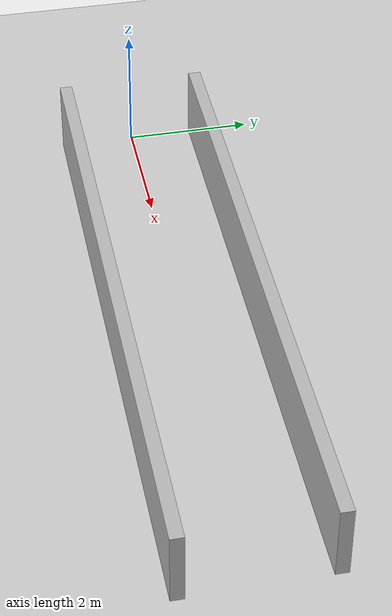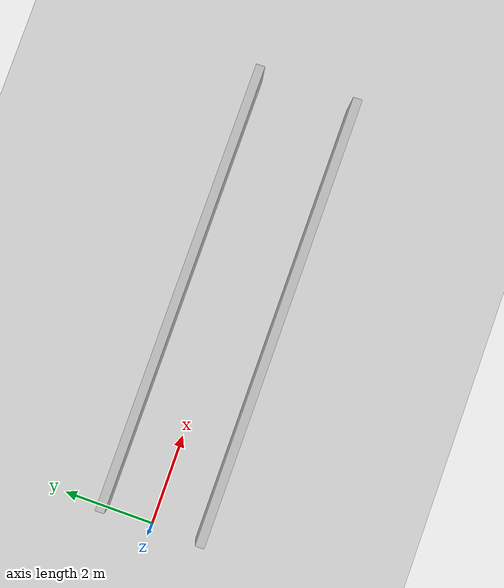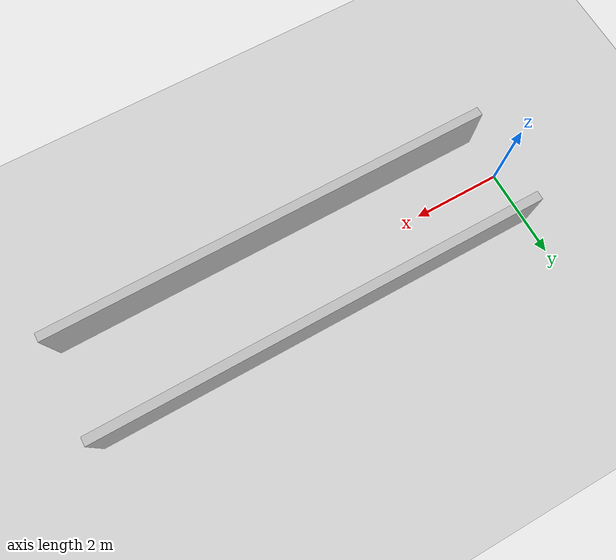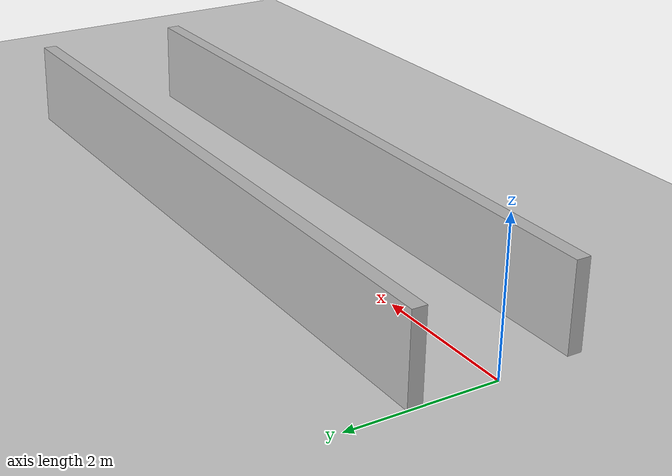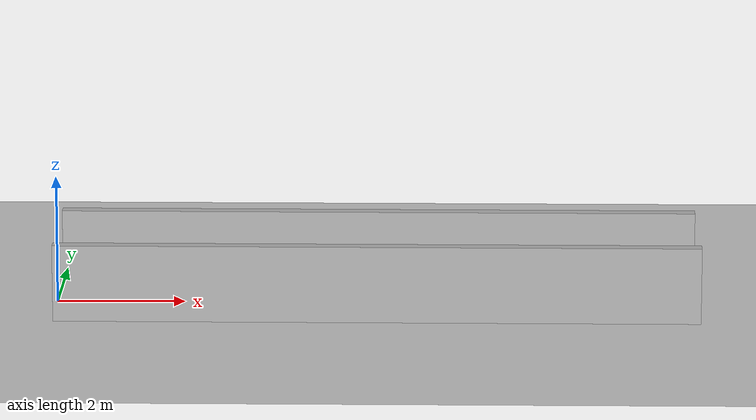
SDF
<?xml version="1.0"?>
<sdf version="1.6">
  <world name="v2-04g-r5-corridor-s5131">
    <gravity>0 0 -9.81</gravity>
    <physics name="v2_deterministic" type="ode">
      <max_step_size>0.002</max_step_size>
      <real_time_update_rate>500</real_time_update_rate>
    </physics>
    <include>
      <uri>model://sun</uri>
    </include>
    <include>
      <uri>model://ground_plane</uri>
    </include>
    <model name="corridor-left">
      <static>true</static>
      <pose>5.000272710 1.092328560 0.600000000 0 0 -0.002133356</pose>
      <link name="link">
        <collision name="collision">
          <geometry>
            <box>
              <size>10.000000 0.200000 1.200000</size>
            </box>
          </geometry>
        </collision>
        <visual name="visual">
          <geometry>
            <box>
              <size>10.000000 0.200000 1.200000</size>
            </box>
          </geometry>
        </visual>
      </link>
    </model>
    <model name="corridor-right">
      <static>true</static>
      <pose>5.014166163 -1.099744449 0.600000000 0 0 -0.001217414</pose>
      <link name="link">
        <collision name="collision">
          <geometry>
            <box>
              <size>10.000000 0.200000 1.200000</size>
            </box>
          </geometry>
        </collision>
        <visual name="visual">
          <geometry>
            <box>
              <size>10.000000 0.200000 1.200000</size>
            </box>
          </geometry>
        </visual>
      </link>
    </model>
  </world>
</sdf>
